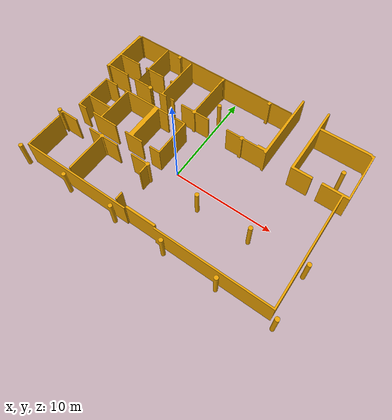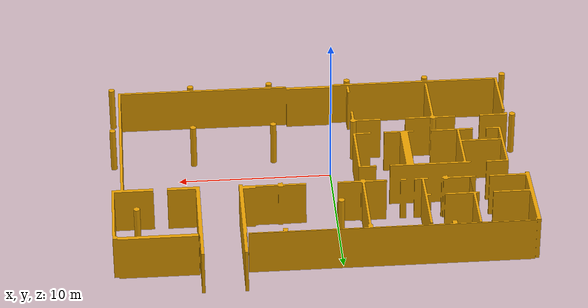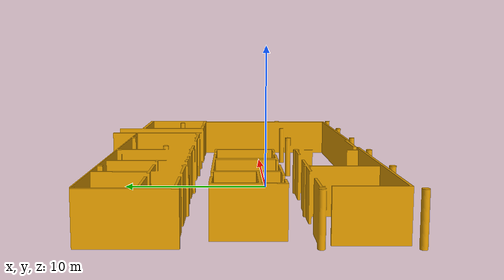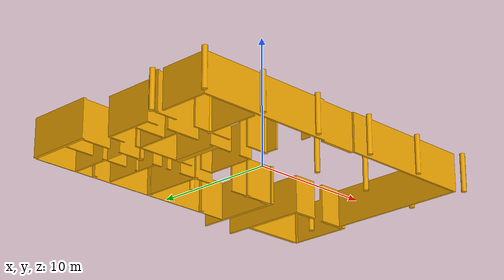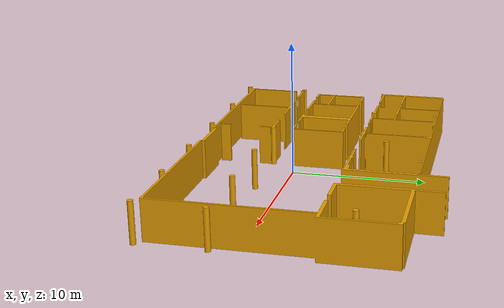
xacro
<robot  xmlns:xacro="http://ros.org/wiki/xacro" name="smart_factory">
  <xacro:include filename="$(find mobipick_description)/urdf/common_properties.urdf.xacro" />

  <xacro:property name="mass" value="500" />
  <link name="smart_factory_link">
    <inertial>
      <origin xyz="0.0 0.0 0.0" rpy="0 0 0" />
      <mass value="10000" />
      <inertia
        ixx="${mass * 0.003988511412844956}"
        ixy="${mass * 0.0004112614213275305}"
        ixz="${mass * 0.00003166287680811595}"
        iyy="${mass * 0.0016270423052260282}"
        iyz="${mass * 0.0000807201704454}"
        izz="${mass * 0.00534355593909}" />
    </inertial>
    <collision name="smart_factory_collision">
        <geometry>
      <mesh filename="package://mobipick_gazebo/meshes/smart_factory.stl" />
        </geometry>
    </collision>
    <visual name="smart_factory_visual">
        <cast_shadows>false</cast_shadows>
        <geometry>
      <mesh filename="package://mobipick_gazebo/meshes/smart_factory.stl" />
        </geometry>
    </visual>
  </link>
</robot>
